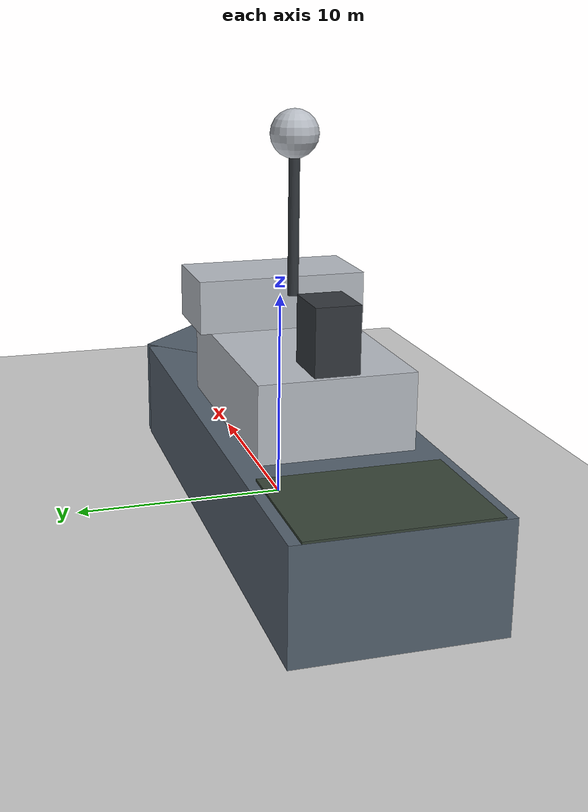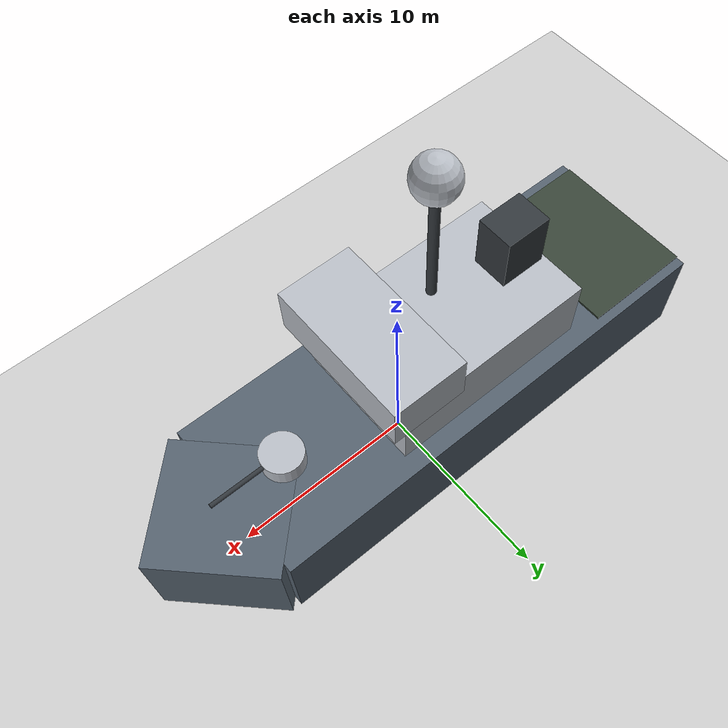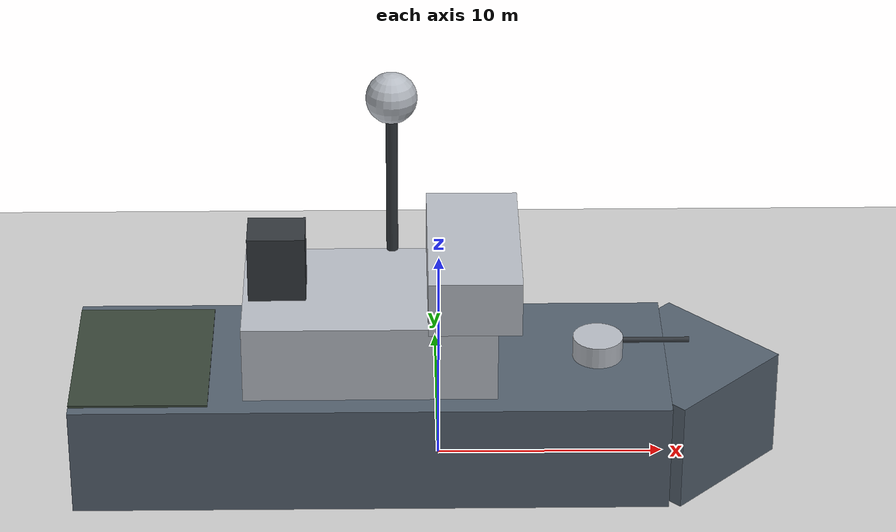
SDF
<?xml version="1.0"?>
<sdf version="1.6">
  <world name="ocean_swarm">

    <physics type="ode">
      <max_step_size>0.001</max_step_size>
      <real_time_factor>1</real_time_factor>
      <real_time_update_rate>1000</real_time_update_rate>
    </physics>

    <gravity>0 0 0</gravity>

    <!-- Global ambient lighting for scene -->
    <ambient>0.5 0.5 0.5 1</ambient>

    <!-- Directional light simulating sun
         Provides primary illumination with shadows for visual feedback.
    -->
    <light name="sun" type="directional">
      <cast_shadows>true</cast_shadows>
      <pose>0 0 50 0 0 0</pose>
      <diffuse>0.8 0.8 0.8 1</diffuse>
      <specular>0.2 0.2 0.2 1</specular>
      <attenuation>
        <range>1000</range>
        <constant>0.9</constant>
        <linear>0.01</linear>
        <quadratic>0.001</quadratic>
      </attenuation>
      <direction>-0.5 0.1 -0.9</direction>
    </light>

    <model name="ocean_surface">
      <static>true</static>
      <link name="surface">
        <collision name="collision">
          <geometry>
            <plane>
              <normal>0 0 1</normal>
              <size>2000 2000</size>
            </plane>
          </geometry>
          <surface>
            <friction>
              <ode>
                <mu>0.1</mu>
                <mu2>0.1</mu2>
              </ode>
            </friction>
          </surface>
        </collision>
        <visual name="visual">
          <geometry>
            <plane>
              <normal>0 0 1</normal>
              <size>2000 2000</size>
            </plane>
          </geometry>
          <material>
            <script>
              <uri>file://media/materials/scripts/gazebo.material</uri>
              <name>Gazebo/Water</name>
            </script>
          </material>
        </visual>
      </link>
    </model>

    <model name="ship_obstacle">
      <static>true</static>
      <pose>0 0 0 0 0 0</pose>
      <link name="hull">
        <collision name="collision">
          <pose>-0.5 0 3 0 0 0</pose>
          <geometry><box><size>31 9 6</size></box></geometry>
        </collision>
        <visual name="hull">
          <pose>-3 0 2.5 0 0 0</pose>
          <geometry><box><size>26 9 5</size></box></geometry>
          <material><ambient>0.33 0.38 0.43 1</ambient><diffuse>0.33 0.38 0.43 1</diffuse><specular>0.2 0.2 0.2 1</specular></material>
        </visual>
        <visual name="bow">
          <pose>10.5 0 2.5 0 0 0.7854</pose>
          <geometry><box><size>6.36 6.36 5</size></box></geometry>
          <material><ambient>0.33 0.38 0.43 1</ambient><diffuse>0.33 0.38 0.43 1</diffuse><specular>0.2 0.2 0.2 1</specular></material>
        </visual>
        <visual name="deckhouse">
          <pose>-3 0 6.75 0 0 0</pose>
          <geometry><box><size>11 7 3.5</size></box></geometry>
          <material><ambient>0.72 0.74 0.77 1</ambient><diffuse>0.72 0.74 0.77 1</diffuse><specular>0.2 0.2 0.2 1</specular></material>
        </visual>
        <visual name="bridge">
          <pose>1.5 0 9.75 0 0 0</pose>
          <geometry><box><size>4 8 2.5</size></box></geometry>
          <material><ambient>0.72 0.74 0.77 1</ambient><diffuse>0.72 0.74 0.77 1</diffuse><specular>0.2 0.2 0.2 1</specular></material>
        </visual>
        <visual name="funnel">
          <pose>-7 0 10 0 0 0</pose>
          <geometry><box><size>2.5 2 3</size></box></geometry>
          <material><ambient>0.2 0.22 0.24 1</ambient><diffuse>0.2 0.22 0.24 1</diffuse><specular>0.2 0.2 0.2 1</specular></material>
        </visual>
        <visual name="mast">
          <pose>-2 0 14 0 0 0</pose>
          <geometry><cylinder><radius>0.25</radius><length>7</length></cylinder></geometry>
          <material><ambient>0.2 0.22 0.24 1</ambient><diffuse>0.2 0.22 0.24 1</diffuse><specular>0.2 0.2 0.2 1</specular></material>
        </visual>
        <visual name="radar">
          <pose>-2 0 17.8 0 0 0</pose>
          <geometry><sphere><radius>1.1</radius></sphere></geometry>
          <material><ambient>0.72 0.74 0.77 1</ambient><diffuse>0.72 0.74 0.77 1</diffuse><specular>0.2 0.2 0.2 1</specular></material>
        </visual>
        <visual name="turret">
          <pose>7 0 5.5 0 0 0</pose>
          <geometry><cylinder><radius>1.1</radius><length>1</length></cylinder></geometry>
          <material><ambient>0.72 0.74 0.77 1</ambient><diffuse>0.72 0.74 0.77 1</diffuse><specular>0.2 0.2 0.2 1</specular></material>
        </visual>
        <visual name="barrel">
          <pose>9 0 5.8 0 1.5708 0</pose>
          <geometry><cylinder><radius>0.12</radius><length>4</length></cylinder></geometry>
          <material><ambient>0.2 0.22 0.24 1</ambient><diffuse>0.2 0.22 0.24 1</diffuse><specular>0.2 0.2 0.2 1</specular></material>
        </visual>
        <visual name="helipad">
          <pose>-13 0 5.05 0 0 0</pose>
          <geometry><box><size>6 8 0.1</size></box></geometry>
          <material><ambient>0.22 0.27 0.22 1</ambient><diffuse>0.22 0.27 0.22 1</diffuse><specular>0.2 0.2 0.2 1</specular></material>
        </visual>
      </link>
    </model>

  </world>
</sdf>
